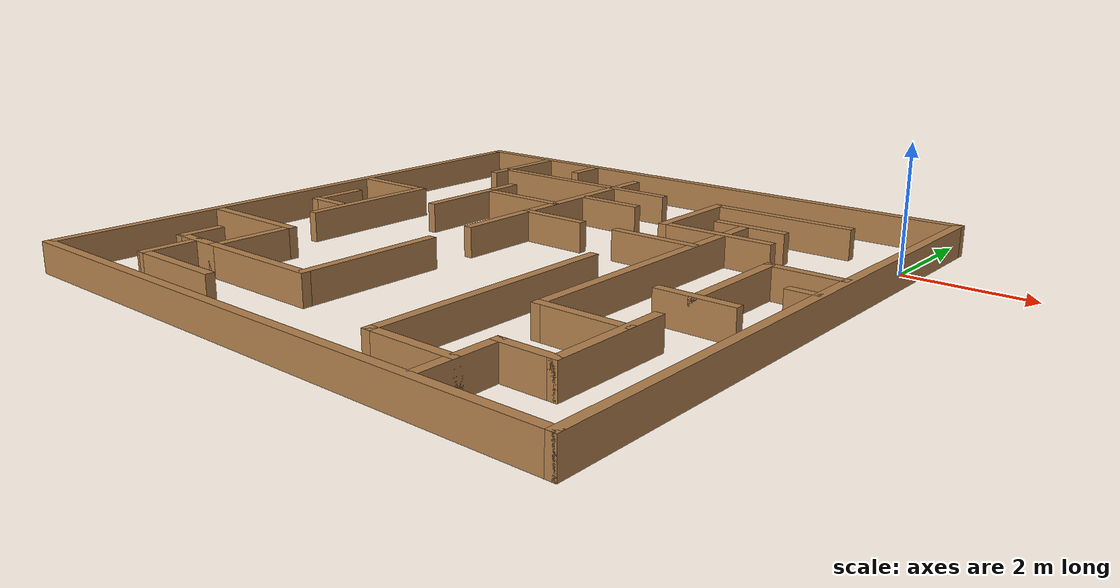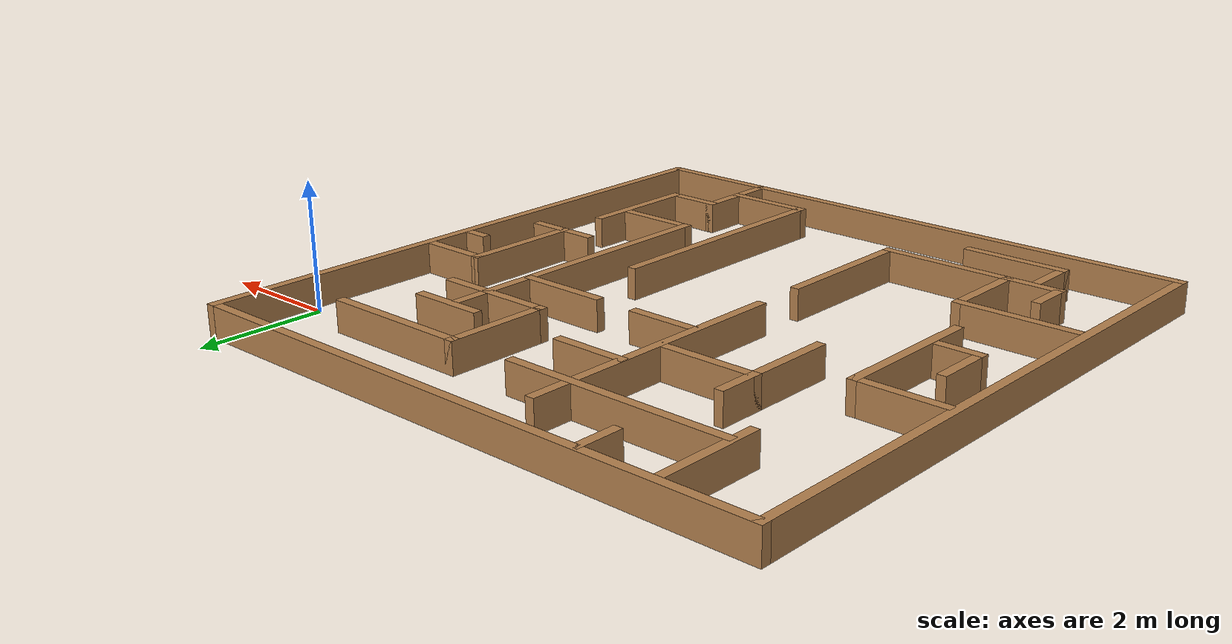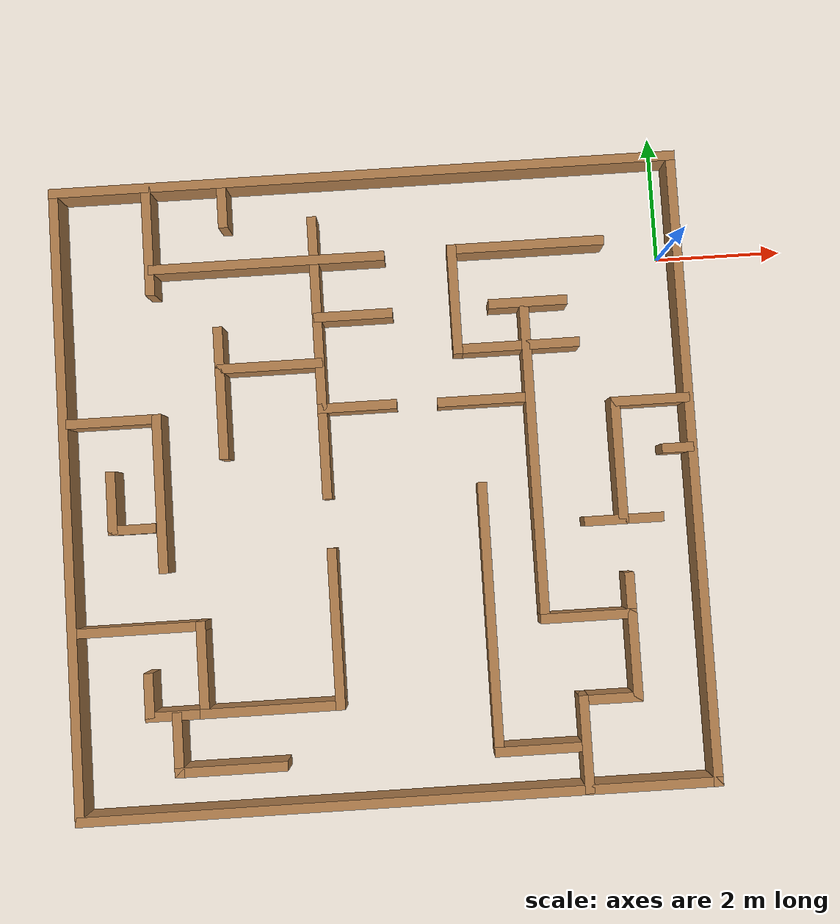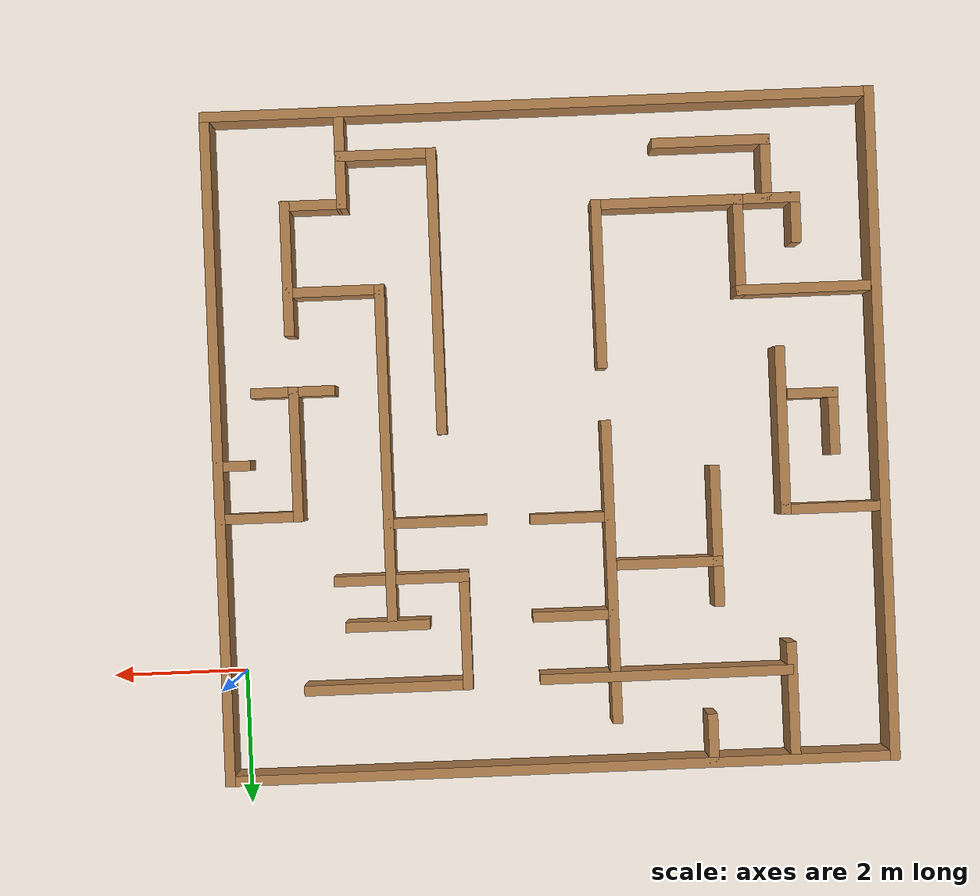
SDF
<?xml version='1.0'?>
<sdf version='1.7'>
  <model name='maze_one'>
    <pose>-4.696 -3.353 0 0 -0 0</pose>
    <link name='Wall_1'>
      <collision name='Wall_1_Collision'>
        <geometry>
          <box>
            <size>10 0.15 0.5</size>
          </box>
        </geometry>
        <pose>0 0 0.25 0 -0 0</pose>
      </collision>
      <visual name='Wall_1_Visual'>
        <pose>0 0 0.25 0 -0 0</pose>
        <geometry>
          <box>
            <size>10 0.15 0.5</size>
          </box>
        </geometry>
        <material>
          <script>
            <uri>file://media/materials/scripts/gazebo.material</uri>
            <name>Gazebo/Wood</name>
          </script>
          <ambient>0.760784 0.662745 0.627451 1</ambient>
        </material>
        <meta>
          <layer>0</layer>
        </meta>
      </visual>
      <pose>-4.925 0 0 0 -0 -1.5708</pose>
    </link>
    <link name='Wall_11'>
      <collision name='Wall_11_Collision'>
        <geometry>
          <box>
            <size>2 0.15 0.5</size>
          </box>
        </geometry>
        <pose>0 0 0.25 0 -0 0</pose>
      </collision>
      <visual name='Wall_11_Visual'>
        <pose>0 0 0.25 0 -0 0</pose>
        <geometry>
          <box>
            <size>2 0.15 0.5</size>
          </box>
        </geometry>
        <material>
          <script>
            <uri>file://media/materials/scripts/gazebo.material</uri>
            <name>Gazebo/Wood</name>
          </script>
          <ambient>0.760784 0.662745 0.627451 1</ambient>
        </material>
        <meta>
          <layer>0</layer>
        </meta>
      </visual>
      <pose>3.764 0.118 0 0 -0 1.5708</pose>
    </link>
    <link name='Wall_12'>
      <collision name='Wall_12_Collision'>
        <geometry>
          <box>
            <size>1.25 0.15 0.5</size>
          </box>
        </geometry>
        <pose>0 0 0.25 0 -0 0</pose>
      </collision>
      <visual name='Wall_12_Visual'>
        <pose>0 0 0.25 0 -0 0</pose>
        <geometry>
          <box>
            <size>1.25 0.15 0.5</size>
          </box>
        </geometry>
        <material>
          <script>
            <uri>file://media/materials/scripts/gazebo.material</uri>
            <name>Gazebo/Wood</name>
          </script>
          <ambient>0.760784 0.662745 0.627451 1</ambient>
        </material>
        <meta>
          <layer>0</layer>
        </meta>
      </visual>
      <pose>4.314 1.043 0 0 -0 0</pose>
    </link>
    <link name='Wall_16'>
      <collision name='Wall_16_Collision'>
        <geometry>
          <box>
            <size>1.25 0.15 0.5</size>
          </box>
        </geometry>
        <pose>0 0 0.25 0 -0 0</pose>
      </collision>
      <visual name='Wall_16_Visual'>
        <pose>0 0 0.25 0 -0 0</pose>
        <geometry>
          <box>
            <size>1.25 0.15 0.5</size>
          </box>
        </geometry>
        <material>
          <script>
            <uri>file://media/materials/scripts/gazebo.material</uri>
            <name>Gazebo/Wood</name>
          </script>
          <ambient>0.760784 0.662745 0.627451 1</ambient>
        </material>
        <meta>
          <layer>0</layer>
        </meta>
      </visual>
      <pose>3.771 -0.807 0 0 -0 0</pose>
    </link>
    <link name='Wall_18'>
      <collision name='Wall_18_Collision'>
        <geometry>
          <box>
            <size>1.5 0.15 0.5</size>
          </box>
        </geometry>
        <pose>0 0 0.25 0 -0 0</pose>
      </collision>
      <visual name='Wall_18_Visual'>
        <pose>0 0 0.25 0 -0 0</pose>
        <geometry>
          <box>
            <size>1.5 0.15 0.5</size>
          </box>
        </geometry>
        <material>
          <script>
            <uri>file://media/materials/scripts/gazebo.material</uri>
            <name>Gazebo/Wood</name>
          </script>
          <ambient>0.760784 0.662745 0.627451 1</ambient>
        </material>
        <meta>
          <layer>0</layer>
        </meta>
      </visual>
      <pose>3.109 -2.275 0 0 -0 3.14159</pose>
    </link>
    <link name='Wall_19'>
      <collision name='Wall_19_Collision'>
        <geometry>
          <box>
            <size>5 0.15 0.5</size>
          </box>
        </geometry>
        <pose>0 0 0.25 0 -0 0</pose>
      </collision>
      <visual name='Wall_19_Visual'>
        <pose>0 0 0.25 0 -0 0</pose>
        <geometry>
          <box>
            <size>5 0.15 0.5</size>
          </box>
        </geometry>
        <material>
          <script>
            <uri>file://media/materials/scripts/gazebo.material</uri>
            <name>Gazebo/Wood</name>
          </script>
          <ambient>0.760784 0.662745 0.627451 1</ambient>
        </material>
        <meta>
          <layer>0</layer>
        </meta>
      </visual>
      <pose>2.434 0.15 0 0 -0 1.5708</pose>
    </link>
    <link name='Wall_2'>
      <collision name='Wall_2_Collision'>
        <geometry>
          <box>
            <size>10 0.15 0.5</size>
          </box>
        </geometry>
        <pose>0 0 0.25 0 -0 0</pose>
      </collision>
      <visual name='Wall_2_Visual'>
        <pose>0 0 0.25 0 -0 0</pose>
        <geometry>
          <box>
            <size>10 0.15 0.5</size>
          </box>
        </geometry>
        <material>
          <script>
            <uri>file://media/materials/scripts/gazebo.material</uri>
            <name>Gazebo/Wood</name>
          </script>
          <ambient>0.760784 0.662745 0.627451 1</ambient>
        </material>
        <meta>
          <layer>0</layer>
        </meta>
      </visual>
      <pose>0 -4.925 0 0 -0 0</pose>
    </link>
    <link name='Wall_21'>
      <collision name='Wall_21_Collision'>
        <geometry>
          <box>
            <size>2 0.15 0.5</size>
          </box>
        </geometry>
        <pose>0 0 0.25 0 -0 0</pose>
      </collision>
      <visual name='Wall_21_Visual'>
        <pose>0 0 0.25 0 -0 0</pose>
        <geometry>
          <box>
            <size>2 0.15 0.5</size>
          </box>
        </geometry>
        <material>
          <script>
            <uri>file://media/materials/scripts/gazebo.material</uri>
            <name>Gazebo/Wood</name>
          </script>
          <ambient>0.760784 0.662745 0.627451 1</ambient>
        </material>
        <meta>
          <layer>0</layer>
        </meta>
      </visual>
      <pose>2.275 2.029 0 0 -0 3.14159</pose>
    </link>
    <link name='Wall_22'>
      <collision name='Wall_22_Collision'>
        <geometry>
          <box>
            <size>1.75 0.15 0.5</size>
          </box>
        </geometry>
        <pose>0 0 0.25 0 -0 0</pose>
      </collision>
      <visual name='Wall_22_Visual'>
        <pose>0 0 0.25 0 -0 0</pose>
        <geometry>
          <box>
            <size>1.75 0.15 0.5</size>
          </box>
        </geometry>
        <material>
          <script>
            <uri>file://media/materials/scripts/gazebo.material</uri>
            <name>Gazebo/Wood</name>
          </script>
          <ambient>0.760784 0.662745 0.627451 1</ambient>
        </material>
        <meta>
          <layer>0</layer>
        </meta>
      </visual>
      <pose>1.35 2.829 0 0 -0 1.5708</pose>
    </link>
    <link name='Wall_23'>
      <collision name='Wall_23_Collision'>
        <geometry>
          <box>
            <size>2.5 0.15 0.5</size>
          </box>
        </geometry>
        <pose>0 0 0.25 0 -0 0</pose>
      </collision>
      <visual name='Wall_23_Visual'>
        <pose>0 0 0.25 0 -0 0</pose>
        <geometry>
          <box>
            <size>2.5 0.15 0.5</size>
          </box>
        </geometry>
        <material>
          <script>
            <uri>file://media/materials/scripts/gazebo.material</uri>
            <name>Gazebo/Wood</name>
          </script>
          <ambient>0.760784 0.662745 0.627451 1</ambient>
        </material>
        <meta>
          <layer>0</layer>
        </meta>
      </visual>
      <pose>2.525 3.629 0 0 -0 0</pose>
    </link>
    <link name='Wall_26'>
      <collision name='Wall_26_Collision'>
        <geometry>
          <box>
            <size>1.25 0.15 0.5</size>
          </box>
        </geometry>
        <pose>0 0 0.25 0 -0 0</pose>
      </collision>
      <visual name='Wall_26_Visual'>
        <pose>0 0 0.25 0 -0 0</pose>
        <geometry>
          <box>
            <size>1.25 0.15 0.5</size>
          </box>
        </geometry>
        <material>
          <script>
            <uri>file://media/materials/scripts/gazebo.material</uri>
            <name>Gazebo/Wood</name>
          </script>
          <ambient>0.760784 0.662745 0.627451 1</ambient>
        </material>
        <meta>
          <layer>0</layer>
        </meta>
      </visual>
      <pose>2.503 2.713 0 0 -0 0</pose>
    </link>
    <link name='Wall_28'>
      <collision name='Wall_28_Collision'>
        <geometry>
          <box>
            <size>3.75 0.15 0.5</size>
          </box>
        </geometry>
        <pose>0 0 0.25 0 -0 0</pose>
      </collision>
      <visual name='Wall_28_Visual'>
        <pose>0 0 0.25 0 -0 0</pose>
        <geometry>
          <box>
            <size>3.75 0.15 0.5</size>
          </box>
        </geometry>
        <material>
          <script>
            <uri>file://media/materials/scripts/gazebo.material</uri>
            <name>Gazebo/Wood</name>
          </script>
          <ambient>0.760784 0.662745 0.627451 1</ambient>
        </material>
        <meta>
          <layer>0</layer>
        </meta>
      </visual>
      <pose>-1.596 3.598 0 0 -0 3.14159</pose>
    </link>
    <link name='Wall_3'>
      <collision name='Wall_3_Collision'>
        <geometry>
          <box>
            <size>10 0.15 0.5</size>
          </box>
        </geometry>
        <pose>0 0 0.25 0 -0 0</pose>
      </collision>
      <visual name='Wall_3_Visual'>
        <pose>0 0 0.25 0 -0 0</pose>
        <geometry>
          <box>
            <size>10 0.15 0.5</size>
          </box>
        </geometry>
        <material>
          <script>
            <uri>file://media/materials/scripts/gazebo.material</uri>
            <name>Gazebo/Wood</name>
          </script>
          <ambient>0.760784 0.662745 0.627451 1</ambient>
        </material>
        <meta>
          <layer>0</layer>
        </meta>
      </visual>
      <pose>4.925 0 0 0 -0 1.5708</pose>
    </link>
    <link name='Wall_31'>
      <collision name='Wall_31_Collision'>
        <geometry>
          <box>
            <size>4.5 0.15 0.5</size>
          </box>
        </geometry>
        <pose>0 0 0.25 0 -0 0</pose>
      </collision>
      <visual name='Wall_31_Visual'>
        <pose>0 0 0.25 0 -0 0</pose>
        <geometry>
          <box>
            <size>4.5 0.15 0.5</size>
          </box>
        </geometry>
        <material>
          <script>
            <uri>file://media/materials/scripts/gazebo.material</uri>
            <name>Gazebo/Wood</name>
          </script>
          <ambient>0.760784 0.662745 0.627451 1</ambient>
        </material>
        <meta>
          <layer>0</layer>
        </meta>
      </visual>
      <pose>-0.842 2.046 0 0 -0 -1.5708</pose>
    </link>
    <link name='Wall_33'>
      <collision name='Wall_33_Collision'>
        <geometry>
          <box>
            <size>0.75 0.15 0.5</size>
          </box>
        </geometry>
        <pose>0 0 0.25 0 -0 0</pose>
      </collision>
      <visual name='Wall_33_Visual'>
        <pose>0 0 0.25 0 -0 0</pose>
        <geometry>
          <box>
            <size>0.75 0.15 0.5</size>
          </box>
        </geometry>
        <material>
          <script>
            <uri>file://media/materials/scripts/gazebo.material</uri>
            <name>Gazebo/Wood</name>
          </script>
          <ambient>0.760784 0.662745 0.627451 1</ambient>
        </material>
        <meta>
          <layer>0</layer>
        </meta>
      </visual>
      <pose>-2.25 4.582 0 0 -0 1.5708</pose>
    </link>
    <link name='Wall_35'>
      <collision name='Wall_35_Collision'>
        <geometry>
          <box>
            <size>1.25 0.15 0.5</size>
          </box>
        </geometry>
        <pose>0 0 0.25 0 -0 0</pose>
      </collision>
      <visual name='Wall_35_Visual'>
        <pose>0 0 0.25 0 -0 0</pose>
        <geometry>
          <box>
            <size>1.25 0.15 0.5</size>
          </box>
        </geometry>
        <material>
          <script>
            <uri>file://media/materials/scripts/gazebo.material</uri>
            <name>Gazebo/Wood</name>
          </script>
          <ambient>0.760784 0.662745 0.627451 1</ambient>
        </material>
        <meta>
          <layer>0</layer>
        </meta>
      </visual>
      <pose>-0.272 2.673 0 0 -0 0</pose>
    </link>
    <link name='Wall_37'>
      <collision name='Wall_37_Collision'>
        <geometry>
          <box>
            <size>1.25 0.15 0.5</size>
          </box>
        </geometry>
        <pose>0 0 0.25 0 -0 0</pose>
      </collision>
      <visual name='Wall_37_Visual'>
        <pose>0 0 0.25 0 -0 0</pose>
        <geometry>
          <box>
            <size>1.25 0.15 0.5</size>
          </box>
        </geometry>
        <material>
          <script>
            <uri>file://media/materials/scripts/gazebo.material</uri>
            <name>Gazebo/Wood</name>
          </script>
          <ambient>0.760784 0.662745 0.627451 1</ambient>
        </material>
        <meta>
          <layer>0</layer>
        </meta>
      </visual>
      <pose>-0.292 1.224 0 0 -0 0</pose>
    </link>
    <link name='Wall_4'>
      <collision name='Wall_4_Collision'>
        <geometry>
          <box>
            <size>10 0.15 0.5</size>
          </box>
        </geometry>
        <pose>0 0 0.25 0 -0 0</pose>
      </collision>
      <visual name='Wall_4_Visual'>
        <pose>0 0 0.25 0 -0 0</pose>
        <geometry>
          <box>
            <size>10 0.15 0.5</size>
          </box>
        </geometry>
        <material>
          <script>
            <uri>file://media/materials/scripts/gazebo.material</uri>
            <name>Gazebo/Wood</name>
          </script>
          <ambient>0.760784 0.662745 0.627451 1</ambient>
        </material>
        <meta>
          <layer>0</layer>
        </meta>
      </visual>
      <pose>0 4.925 0 0 -0 3.14159</pose>
    </link>
    <link name='Wall_40'>
      <collision name='Wall_40_Collision'>
        <geometry>
          <box>
            <size>1.5 0.15 0.5</size>
          </box>
        </geometry>
        <pose>0 0 0.25 0 -0 0</pose>
      </collision>
      <visual name='Wall_40_Visual'>
        <pose>0 0 0.25 0 -0 0</pose>
        <geometry>
          <box>
            <size>1.5 0.15 0.5</size>
          </box>
        </geometry>
        <material>
          <script>
            <uri>file://media/materials/scripts/gazebo.material</uri>
            <name>Gazebo/Wood</name>
          </script>
          <ambient>0.760784 0.662745 0.627451 1</ambient>
        </material>
        <meta>
          <layer>0</layer>
        </meta>
      </visual>
      <pose>1.723 1.204 0 0 -0 0</pose>
    </link>
    <link name='Wall_42'>
      <collision name='Wall_42_Collision'>
        <geometry>
          <box>
            <size>2.5 0.15 0.5</size>
          </box>
        </geometry>
        <pose>0 0 0.25 0 -0 0</pose>
      </collision>
      <visual name='Wall_42_Visual'>
        <pose>0 0 0.25 0 -0 0</pose>
        <geometry>
          <box>
            <size>2.5 0.15 0.5</size>
          </box>
        </geometry>
        <material>
          <script>
            <uri>file://media/materials/scripts/gazebo.material</uri>
            <name>Gazebo/Wood</name>
          </script>
          <ambient>0.760784 0.662745 0.627451 1</ambient>
        </material>
        <meta>
          <layer>0</layer>
        </meta>
      </visual>
      <pose>-0.822 -2.223 0 0 -0 -1.5708</pose>
    </link>
    <link name='Wall_43'>
      <collision name='Wall_43_Collision'>
        <geometry>
          <box>
            <size>2.25 0.15 0.5</size>
          </box>
        </geometry>
        <pose>0 0 0.25 0 -0 0</pose>
      </collision>
      <visual name='Wall_43_Visual'>
        <pose>0 0 0.25 0 -0 0</pose>
        <geometry>
          <box>
            <size>2.25 0.15 0.5</size>
          </box>
        </geometry>
        <material>
          <script>
            <uri>file://media/materials/scripts/gazebo.material</uri>
            <name>Gazebo/Wood</name>
          </script>
          <ambient>0.760784 0.662745 0.627451 1</ambient>
        </material>
        <meta>
          <layer>0</layer>
        </meta>
      </visual>
      <pose>-1.872 -3.398 0 0 -0 3.14159</pose>
    </link>
    <link name='Wall_44'>
      <collision name='Wall_44_Collision'>
        <geometry>
          <box>
            <size>1.5 0.15 0.5</size>
          </box>
        </geometry>
        <pose>0 0 0.25 0 -0 0</pose>
      </collision>
      <visual name='Wall_44_Visual'>
        <pose>0 0 0.25 0 -0 0</pose>
        <geometry>
          <box>
            <size>1.5 0.15 0.5</size>
          </box>
        </geometry>
        <material>
          <script>
            <uri>file://media/materials/scripts/gazebo.material</uri>
            <name>Gazebo/Wood</name>
          </script>
          <ambient>0.760784 0.662745 0.627451 1</ambient>
        </material>
        <meta>
          <layer>0</layer>
        </meta>
      </visual>
      <pose>-2.922 -2.723 0 0 -0 1.5708</pose>
    </link>
    <link name='Wall_45'>
      <collision name='Wall_45_Collision'>
        <geometry>
          <box>
            <size>2 0.15 0.5</size>
          </box>
        </geometry>
        <pose>0 0 0.25 0 -0 0</pose>
      </collision>
      <visual name='Wall_45_Visual'>
        <pose>0 0 0.25 0 -0 0</pose>
        <geometry>
          <box>
            <size>2 0.15 0.5</size>
          </box>
        </geometry>
        <material>
          <script>
            <uri>file://media/materials/scripts/gazebo.material</uri>
            <name>Gazebo/Wood</name>
          </script>
          <ambient>0.760784 0.662745 0.627451 1</ambient>
        </material>
        <meta>
          <layer>0</layer>
        </meta>
      </visual>
      <pose>-3.847 -2.048 0 0 -0 3.14159</pose>
    </link>
    <link name='Wall_47'>
      <collision name='Wall_47_Collision'>
        <geometry>
          <box>
            <size>1 0.15 0.5</size>
          </box>
        </geometry>
        <pose>0 0 0.25 0 -0 0</pose>
      </collision>
      <visual name='Wall_47_Visual'>
        <pose>0 0 0.25 0 -0 0</pose>
        <geometry>
          <box>
            <size>1 0.15 0.5</size>
          </box>
        </geometry>
        <material>
          <script>
            <uri>file://media/materials/scripts/gazebo.material</uri>
            <name>Gazebo/Wood</name>
          </script>
          <ambient>0.760784 0.662745 0.627451 1</ambient>
        </material>
        <meta>
          <layer>0</layer>
        </meta>
      </visual>
      <pose>-3.347 -3.398 0 0 -0 3.14159</pose>
    </link>
    <link name='Wall_48'>
      <collision name='Wall_48_Collision'>
        <geometry>
          <box>
            <size>0.75 0.15 0.5</size>
          </box>
        </geometry>
        <pose>0 0 0.25 0 -0 0</pose>
      </collision>
      <visual name='Wall_48_Visual'>
        <pose>0 0 0.25 0 -0 0</pose>
        <geometry>
          <box>
            <size>0.75 0.15 0.5</size>
          </box>
        </geometry>
        <material>
          <script>
            <uri>file://media/materials/scripts/gazebo.material</uri>
            <name>Gazebo/Wood</name>
          </script>
          <ambient>0.760784 0.662745 0.627451 1</ambient>
        </material>
        <meta>
          <layer>0</layer>
        </meta>
      </visual>
      <pose>-3.772 -3.098 0 0 -0 1.5708</pose>
    </link>
    <link name='Wall_50'>
      <collision name='Wall_50_Collision'>
        <geometry>
          <box>
            <size>1 0.15 0.5</size>
          </box>
        </geometry>
        <pose>0 0 0.25 0 -0 0</pose>
      </collision>
      <visual name='Wall_50_Visual'>
        <pose>0 0 0.25 0 -0 0</pose>
        <geometry>
          <box>
            <size>1 0.15 0.5</size>
          </box>
        </geometry>
        <material>
          <script>
            <uri>file://media/materials/scripts/gazebo.material</uri>
            <name>Gazebo/Wood</name>
          </script>
          <ambient>0.760784 0.662745 0.627451 1</ambient>
        </material>
        <meta>
          <layer>0</layer>
        </meta>
      </visual>
      <pose>-3.357 -3.847 0 0 -0 -1.5708</pose>
    </link>
    <link name='Wall_51'>
      <collision name='Wall_51_Collision'>
        <geometry>
          <box>
            <size>1.75 0.15 0.5</size>
          </box>
        </geometry>
        <pose>0 0 0.25 0 -0 0</pose>
      </collision>
      <visual name='Wall_51_Visual'>
        <pose>0 0 0.25 0 -0 0</pose>
        <geometry>
          <box>
            <size>1.75 0.15 0.5</size>
          </box>
        </geometry>
        <material>
          <script>
            <uri>file://media/materials/scripts/gazebo.material</uri>
            <name>Gazebo/Wood</name>
          </script>
          <ambient>0.760784 0.662745 0.627451 1</ambient>
        </material>
        <meta>
          <layer>0</layer>
        </meta>
      </visual>
      <pose>-2.557 -4.272 0 0 -0 0</pose>
    </link>
    <link name='Wall_54'>
      <collision name='Wall_54_Collision'>
        <geometry>
          <box>
            <size>0.75 0.15 0.5</size>
          </box>
        </geometry>
        <pose>0 0 0.25 0 -0 0</pose>
      </collision>
      <visual name='Wall_54_Visual'>
        <pose>0 0 0.25 0 -0 0</pose>
        <geometry>
          <box>
            <size>0.75 0.15 0.5</size>
          </box>
        </geometry>
        <material>
          <script>
            <uri>file://media/materials/scripts/gazebo.material</uri>
            <name>Gazebo/Wood</name>
          </script>
          <ambient>0.760784 0.662745 0.627451 1</ambient>
        </material>
        <meta>
          <layer>0</layer>
        </meta>
      </visual>
      <pose>-2.422 2.249 0 0 -0 1.5708</pose>
    </link>
    <link name='Wall_56'>
      <collision name='Wall_56_Collision'>
        <geometry>
          <box>
            <size>1.5 0.15 0.5</size>
          </box>
        </geometry>
        <pose>0 0 0.25 0 -0 0</pose>
      </collision>
      <visual name='Wall_56_Visual'>
        <pose>0 0 0.25 0 -0 0</pose>
        <geometry>
          <box>
            <size>1.5 0.15 0.5</size>
          </box>
        </geometry>
        <material>
          <script>
            <uri>file://media/materials/scripts/gazebo.material</uri>
            <name>Gazebo/Wood</name>
          </script>
          <ambient>0.760784 0.662745 0.627451 1</ambient>
        </material>
        <meta>
          <layer>0</layer>
        </meta>
      </visual>
      <pose>-2.422 1.274 0 0 -0 -1.5708</pose>
    </link>
    <link name='Wall_59'>
      <collision name='Wall_59_Collision'>
        <geometry>
          <box>
            <size>2.5 0.15 0.5</size>
          </box>
        </geometry>
        <pose>0 0 0.25 0 -0 0</pose>
      </collision>
      <visual name='Wall_59_Visual'>
        <pose>0 0 0.25 0 -0 0</pose>
        <geometry>
          <box>
            <size>2.5 0.15 0.5</size>
          </box>
        </geometry>
        <material>
          <script>
            <uri>file://media/materials/scripts/gazebo.material</uri>
            <name>Gazebo/Wood</name>
          </script>
          <ambient>0.760784 0.662745 0.627451 1</ambient>
        </material>
        <meta>
          <layer>0</layer>
        </meta>
      </visual>
      <pose>-3.455 0.049 0 0 -0 -1.5708</pose>
    </link>
    <link name='Wall_61'>
      <collision name='Wall_61_Collision'>
        <geometry>
          <box>
            <size>1.5 0.15 0.5</size>
          </box>
        </geometry>
        <pose>0 0 0.25 0 -0 0</pose>
      </collision>
      <visual name='Wall_61_Visual'>
        <pose>0 0 0.25 0 -0 0</pose>
        <geometry>
          <box>
            <size>1.5 0.15 0.5</size>
          </box>
        </geometry>
        <material>
          <script>
            <uri>file://media/materials/scripts/gazebo.material</uri>
            <name>Gazebo/Wood</name>
          </script>
          <ambient>0.760784 0.662745 0.627451 1</ambient>
        </material>
        <meta>
          <layer>0</layer>
        </meta>
      </visual>
      <pose>2.264 -4.267 0 0 -0 3.14159</pose>
    </link>
    <link name='Wall_62'>
      <collision name='Wall_62_Collision'>
        <geometry>
          <box>
            <size>4.25 0.15 0.5</size>
          </box>
        </geometry>
        <pose>0 0 0.25 0 -0 0</pose>
      </collision>
      <visual name='Wall_62_Visual'>
        <pose>0 0 0.25 0 -0 0</pose>
        <geometry>
          <box>
            <size>4.25 0.15 0.5</size>
          </box>
        </geometry>
        <material>
          <script>
            <uri>file://media/materials/scripts/gazebo.material</uri>
            <name>Gazebo/Wood</name>
          </script>
          <ambient>0.760784 0.662745 0.627451 1</ambient>
        </material>
        <meta>
          <layer>0</layer>
        </meta>
      </visual>
      <pose>1.589 -2.217 0 0 -0 1.5708</pose>
    </link>
    <link name='Wall_65'>
      <collision name='Wall_65_Collision'>
        <geometry>
          <box>
            <size>0.75 0.15 0.5</size>
          </box>
        </geometry>
        <pose>0 0 0.25 0 -0 0</pose>
      </collision>
      <visual name='Wall_65_Visual'>
        <pose>0 0 0.25 0 -0 0</pose>
        <geometry>
          <box>
            <size>0.75 0.15 0.5</size>
          </box>
        </geometry>
        <material>
          <script>
            <uri>file://media/materials/scripts/gazebo.material</uri>
            <name>Gazebo/Wood</name>
          </script>
          <ambient>0.760784 0.662745 0.627451 1</ambient>
        </material>
        <meta>
          <layer>0</layer>
        </meta>
      </visual>
      <pose>-3.918 -0.485 0 0 -0 3.14159</pose>
    </link>
    <link name='Wall_66'>
      <collision name='Wall_66_Collision'>
        <geometry>
          <box>
            <size>1 0.15 0.5</size>
          </box>
        </geometry>
        <pose>0 0 0.25 0 -0 0</pose>
      </collision>
      <visual name='Wall_66_Visual'>
        <pose>0 0 0.25 0 -0 0</pose>
        <geometry>
          <box>
            <size>1 0.15 0.5</size>
          </box>
        </geometry>
        <material>
          <script>
            <uri>file://media/materials/scripts/gazebo.material</uri>
            <name>Gazebo/Wood</name>
          </script>
          <ambient>0.760784 0.662745 0.627451 1</ambient>
        </material>
        <meta>
          <layer>0</layer>
        </meta>
      </visual>
      <pose>-4.218 -0.06 0 0 -0 1.5708</pose>
    </link>
    <link name='Wall_7'>
      <collision name='Wall_7_Collision'>
        <geometry>
          <box>
            <size>1.5 0.15 0.5</size>
          </box>
        </geometry>
        <pose>0 0 0.25 0 -0 0</pose>
      </collision>
      <visual name='Wall_7_Visual'>
        <pose>0 0 0.25 0 -0 0</pose>
        <geometry>
          <box>
            <size>1.5 0.15 0.5</size>
          </box>
        </geometry>
        <material>
          <script>
            <uri>file://media/materials/scripts/gazebo.material</uri>
            <name>Gazebo/Wood</name>
          </script>
          <ambient>0.760784 0.662745 0.627451 1</ambient>
        </material>
        <meta>
          <layer>0</layer>
        </meta>
      </visual>
      <pose>2.939 -4.235 0 0 -0 1.5708</pose>
    </link>
    <link name='Wall_70'>
      <collision name='Wall_70_Collision'>
        <geometry>
          <box>
            <size>0.5 0.15 0.5</size>
          </box>
        </geometry>
        <pose>0 0 0.25 0 -0 0</pose>
      </collision>
      <visual name='Wall_70_Visual'>
        <pose>0 0 0.25 0 -0 0</pose>
        <geometry>
          <box>
            <size>0.5 0.15 0.5</size>
          </box>
        </geometry>
        <material>
          <script>
            <uri>file://media/materials/scripts/gazebo.material</uri>
            <name>Gazebo/Wood</name>
          </script>
          <ambient>0.760784 0.662745 0.627451 1</ambient>
        </material>
        <meta>
          <layer>0</layer>
        </meta>
      </visual>
      <pose>4.695 0.259 0 0 -0 3.14159</pose>
    </link>
    <link name='Wall_72'>
      <collision name='Wall_72_Collision'>
        <geometry>
          <box>
            <size>1.7 0.15 0.5</size>
          </box>
        </geometry>
        <pose>0 0 0.25 0 -0 0</pose>
      </collision>
      <visual name='Wall_72_Visual'>
        <pose>0 0 0.25 0 -0 0</pose>
        <geometry>
          <box>
            <size>1.7 0.15 0.5</size>
          </box>
        </geometry>
        <material>
          <script>
            <uri>file://media/materials/scripts/gazebo.material</uri>
            <name>Gazebo/Wood</name>
          </script>
          <ambient>0.760784 0.662745 0.627451 1</ambient>
        </material>
        <meta>
          <layer>0</layer>
        </meta>
      </visual>
      <pose>-1.647 1.949 0 0 -0 0</pose>
    </link>
    <link name='Wall_74'>
      <collision name='Wall_74_Collision'>
        <geometry>
          <box>
            <size>1.5 0.15 0.5</size>
          </box>
        </geometry>
        <pose>0 0 0.25 0 -0 0</pose>
      </collision>
      <visual name='Wall_74_Visual'>
        <pose>0 0 0.25 0 -0 0</pose>
        <geometry>
          <box>
            <size>1.5 0.15 0.5</size>
          </box>
        </geometry>
        <material>
          <script>
            <uri>file://media/materials/scripts/gazebo.material</uri>
            <name>Gazebo/Wood</name>
          </script>
          <ambient>0.760784 0.662745 0.627451 1</ambient>
        </material>
        <meta>
          <layer>0</layer>
        </meta>
      </visual>
      <pose>-4.13 1.224 0 0 -0 3.14159</pose>
    </link>
    <link name='Wall_76'>
      <collision name='Wall_76_Collision'>
        <geometry>
          <box>
            <size>1.75 0.15 0.5</size>
          </box>
        </geometry>
        <pose>0 0 0.25 0 -0 0</pose>
      </collision>
      <visual name='Wall_76_Visual'>
        <pose>0 0 0.25 0 -0 0</pose>
        <geometry>
          <box>
            <size>1.75 0.15 0.5</size>
          </box>
        </geometry>
        <material>
          <script>
            <uri>file://media/materials/scripts/gazebo.material</uri>
            <name>Gazebo/Wood</name>
          </script>
          <ambient>0.760784 0.662745 0.627451 1</ambient>
        </material>
        <meta>
          <layer>0</layer>
        </meta>
      </visual>
      <pose>-3.457 4.065 0 0 -0 -1.5708</pose>
    </link>
    <link name='Wall_8'>
      <collision name='Wall_8_Collision'>
        <geometry>
          <box>
            <size>1 0.15 0.5</size>
          </box>
        </geometry>
        <pose>0 0 0.25 0 -0 0</pose>
      </collision>
      <visual name='Wall_8_Visual'>
        <pose>0 0 0.25 0 -0 0</pose>
        <geometry>
          <box>
            <size>1 0.15 0.5</size>
          </box>
        </geometry>
        <material>
          <script>
            <uri>file://media/materials/scripts/gazebo.material</uri>
            <name>Gazebo/Wood</name>
          </script>
          <ambient>0.760784 0.662745 0.627451 1</ambient>
        </material>
        <meta>
          <layer>0</layer>
        </meta>
      </visual>
      <pose>3.364 -3.56 0 0 -0 0</pose>
    </link>
    <link name='Wall_9'>
      <collision name='Wall_9_Collision'>
        <geometry>
          <box>
            <size>2 0.15 0.5</size>
          </box>
        </geometry>
        <pose>0 0 0.25 0 -0 0</pose>
      </collision>
      <visual name='Wall_9_Visual'>
        <pose>0 0 0.25 0 -0 0</pose>
        <geometry>
          <box>
            <size>2 0.15 0.5</size>
          </box>
        </geometry>
        <material>
          <script>
            <uri>file://media/materials/scripts/gazebo.material</uri>
            <name>Gazebo/Wood</name>
          </script>
          <ambient>0.760784 0.662745 0.627451 1</ambient>
        </material>
        <meta>
          <layer>0</layer>
        </meta>
      </visual>
      <pose>3.789 -2.635 0 0 -0 1.5708</pose>
    </link>
    <static>1</static>
  </model>
</sdf>
